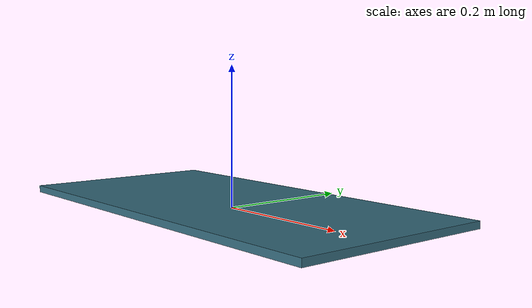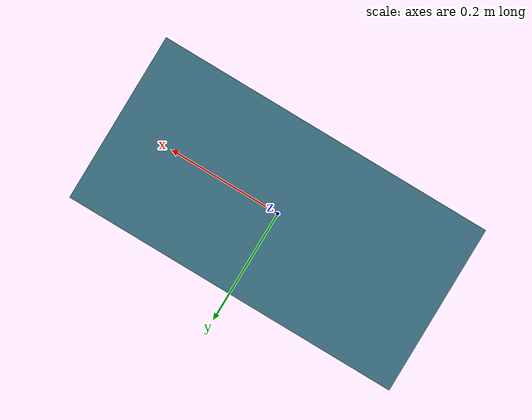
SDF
<?xml version='1.0'?>
<sdf version="1.6">
  <model name="line_dash">
    <static>true</static>
    <link name="link">
      <pose>0 0 0.005 0 0 0</pose>
      <visual name="dash">
        <geometry><box><size>0.6 0.3 0.01</size></box></geometry>
        <material>
          <ambient>0.215 0.427 0.498 1</ambient>
          <diffuse>0.215 0.427 0.498 1</diffuse><emissive>0.215 0.427 0.498 1</emissive>
        </material>
      </visual>
    </link>
  </model>
</sdf>
